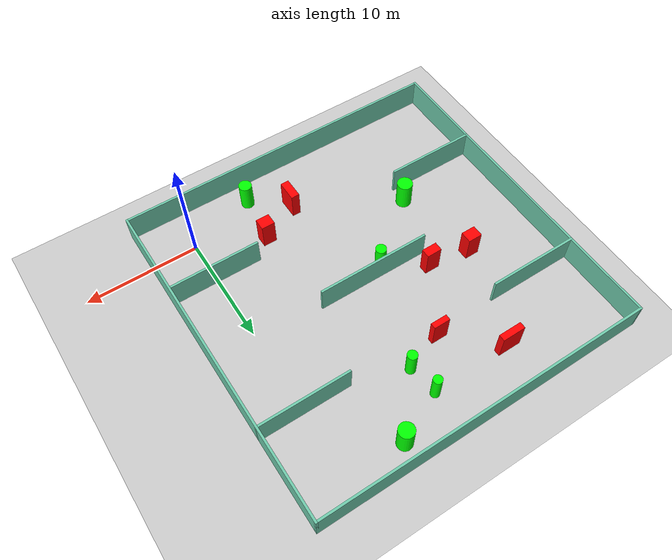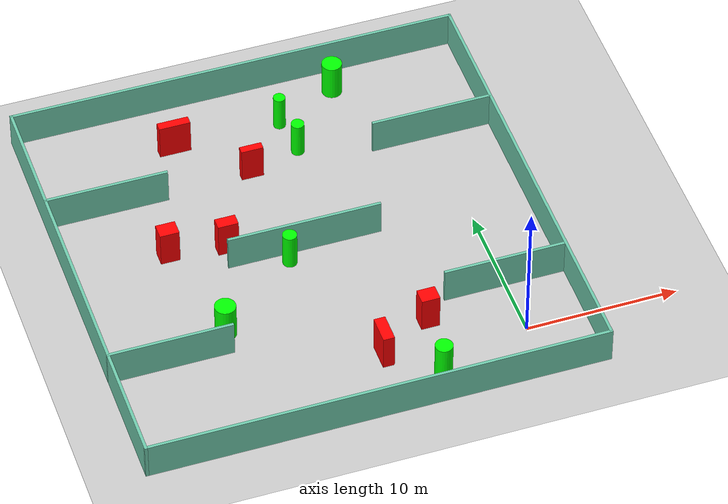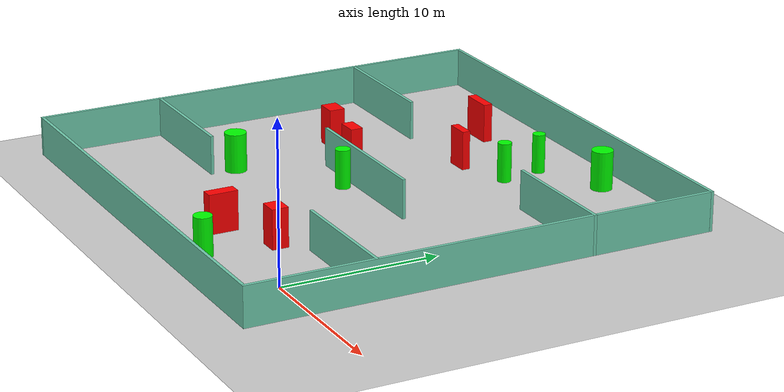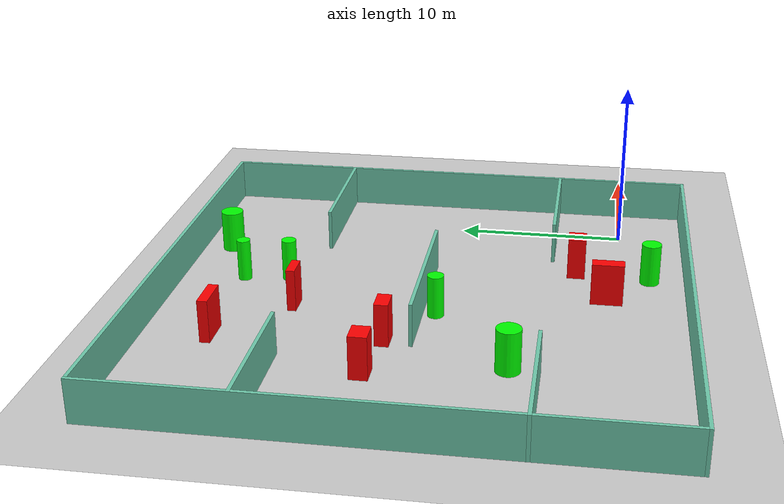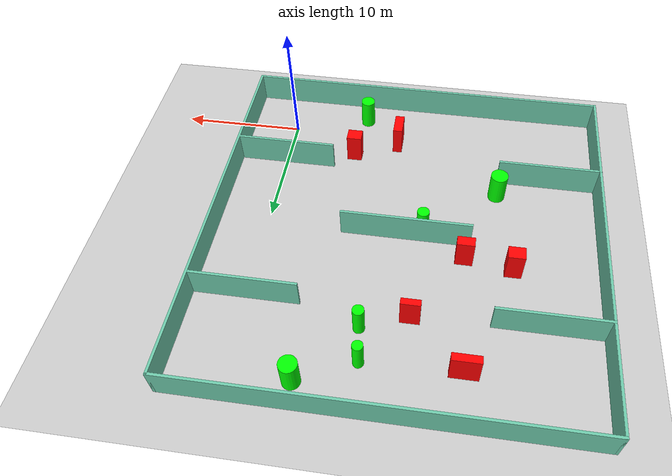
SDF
<sdf version="1.7">
 <world name="default">
  <light name="sun" type="directional">
   <pose>0 0 10 0 -0 0</pose>
   <diffuse>0.8 0.8 0.8 1</diffuse>
   <specular>0.2 0.2 0.2 1</specular>
   <attenuation>
    <range>1000</range>
    <constant>0.9</constant>
    <linear>0.01</linear>
    <quadratic>0.001</quadratic>
   </attenuation>
   <direction>-0.5 0.1 -0.9</direction>
   <spot><inner_angle>0</inner_angle><outer_angle>0</outer_angle><falloff>0</falloff></spot>
  </light>
  <model name="ground_plane">
   <static>1</static>
   <link name="link">
    <collision name="collision">
     <geometry><plane><normal>0 0 1</normal><size>100 100</size></plane></geometry>
     <surface>
      <contact><collide_bitmask>65535</collide_bitmask></contact>
      <friction><ode><mu>100</mu><mu2>50</mu2></ode></friction>
     </surface>
    </collision>
    <visual name="visual">
     <cast_shadows>0</cast_shadows>
     <geometry><plane><normal>0 0 1</normal><size>100 100</size></plane></geometry>
     <material>
      <script><uri>file://media/materials/scripts/gazebo.material</uri><name>Gazebo/Grey</name></script>
     </material>
    </visual>
   </link>
  </model>
  <gravity>0 0 -9.8</gravity>
  <magnetic_field>6e-06 2.3e-05 -4.2e-05</magnetic_field>
  <atmosphere type="adiabatic"/>
  <physics type="ode">
   <max_step_size>0.001</max_step_size>
   <real_time_factor>1</real_time_factor>
   <real_time_update_rate>1000</real_time_update_rate>
  </physics>
  <scene><ambient>0.4 0.4 0.4 1</ambient><background>0.7 0.7 0.7 1</background><shadows>1</shadows></scene>
  <spherical_coordinates>
   <surface_model>EARTH_WGS84</surface_model>
   <latitude_deg>0</latitude_deg>
   <longitude_deg>0</longitude_deg>
   <elevation>0</elevation>
   <heading_deg>0</heading_deg>
  </spherical_coordinates>
  <model name="my_base_walls">
   <link name="Wall_10">
    <collision name="Wall_10_Collision">
     <geometry><box><size>8.2 0.2 2.5</size></box></geometry>
     <pose>0 0 1.25 0 -0 0</pose>
    </collision>
    <visual name="Wall_10_Visual">
     <pose>0 0 1.25 0 -0 0</pose>
     <geometry><box><size>8.2 0.2 2.5</size></box></geometry>
     <material>
      <script><uri>file://media/materials/scripts/gazebo.material</uri><name>Gazebo/Grey</name></script>
      <ambient>0.435294 0.796078 0.67451 1</ambient>
     </material>
     <meta><layer>0</layer></meta>
    </visual>
    <pose>-11 -7 0 0 -0 0</pose>
   </link>
   <link name="Wall_12">
    <collision name="Wall_12_Collision">
     <geometry><box><size>8.2 0.2 2.5</size></box></geometry>
     <pose>0 0 1.25 0 -0 0</pose>
    </collision>
    <visual name="Wall_12_Visual">
     <pose>0 0 1.25 0 -0 0</pose>
     <geometry><box><size>8.2 0.2 2.5</size></box></geometry>
     <material>
      <script><uri>file://media/materials/scripts/gazebo.material</uri><name>Gazebo/Grey</name></script>
      <ambient>0.435294 0.796078 0.67451 1</ambient>
     </material>
     <meta><layer>0</layer></meta>
    </visual>
    <pose>-11 7 0 0 -0 0</pose>
   </link>
   <link name="Wall_14">
    <collision name="Wall_14_Collision">
     <geometry><box><size>8.2 0.2 2.5</size></box></geometry>
     <pose>0 0 1.25 0 -0 0</pose>
    </collision>
    <visual name="Wall_14_Visual">
     <pose>0 0 1.25 0 -0 0</pose>
     <geometry><box><size>8.2 0.2 2.5</size></box></geometry>
     <material>
      <script><uri>file://media/materials/scripts/gazebo.material</uri><name>Gazebo/Grey</name></script>
      <ambient>0.435294 0.796078 0.67451 1</ambient>
     </material>
     <meta><layer>0</layer></meta>
    </visual>
    <pose>11 7 0 0 -0 3.14159</pose>
   </link>
   <link name="Wall_16">
    <collision name="Wall_16_Collision">
     <geometry><box><size>10.2 0.2 2.5</size></box></geometry>
     <pose>0 0 1.25 0 -0 0</pose>
    </collision>
    <visual name="Wall_16_Visual">
     <pose>0 0 1.25 0 -0 0</pose>
     <geometry><box><size>10.2 0.2 2.5</size></box></geometry>
     <material>
      <script><uri>file://media/materials/scripts/gazebo.material</uri><name>Gazebo/Grey</name></script>
      <ambient>0.435294 0.796078 0.67451 1</ambient>
     </material>
     <meta><layer>0</layer></meta>
    </visual>
    <pose>0 0 0 0 -0 3.14159</pose>
   </link>
   <link name="Wall_2">
    <collision name="Wall_2_Collision">
     <geometry><box><size>30.2 0.2 2.5</size></box></geometry>
     <pose>0 0 1.25 0 -0 0</pose>
    </collision>
    <visual name="Wall_2_Visual">
     <pose>0 0 1.25 0 -0 0</pose>
     <geometry><box><size>30.2 0.2 2.5</size></box></geometry>
     <material>
      <script><uri>file://media/materials/scripts/gazebo.material</uri><name>Gazebo/Grey</name></script>
      <ambient>0.435294 0.796078 0.67451 1</ambient>
     </material>
     <meta><layer>0</layer></meta>
    </visual>
    <pose>0 -15 0 0 -0 3.14159</pose>
   </link>
   <link name="Wall_3">
    <collision name="Wall_3_Collision">
     <geometry><box><size>30.2 0.2 2.5</size></box></geometry>
     <pose>0 0 1.25 0 -0 0</pose>
    </collision>
    <visual name="Wall_3_Visual">
     <pose>0 0 1.25 0 -0 0</pose>
     <geometry><box><size>30.2 0.2 2.5</size></box></geometry>
     <material>
      <script><uri>file://media/materials/scripts/gazebo.material</uri><name>Gazebo/Grey</name></script>
      <ambient>0.435294 0.796078 0.67451 1</ambient>
     </material>
     <meta><layer>0</layer></meta>
    </visual>
    <pose>-15 0 0 0 -0 1.5708</pose>
   </link>
   <link name="Wall_4">
    <collision name="Wall_4_Collision">
     <geometry><box><size>30.2 0.2 2.5</size></box></geometry>
     <pose>0 0 1.25 0 -0 0</pose>
    </collision>
    <visual name="Wall_4_Visual">
     <pose>0 0 1.25 0 -0 0</pose>
     <geometry><box><size>30.2 0.2 2.5</size></box></geometry>
     <material>
      <script><uri>file://media/materials/scripts/gazebo.material</uri><name>Gazebo/Grey</name></script>
      <ambient>0.435294 0.796078 0.67451 1</ambient>
     </material>
     <meta><layer>0</layer></meta>
    </visual>
    <pose>0 15 0 0 -0 0</pose>
   </link>
   <link name="Wall_6">
    <collision name="Wall_6_Collision">
     <geometry><box><size>30.2 0.2 2.5</size></box></geometry>
     <pose>0 0 1.25 0 -0 0</pose>
    </collision>
    <visual name="Wall_6_Visual">
     <pose>0 0 1.25 0 -0 0</pose>
     <geometry><box><size>30.2 0.2 2.5</size></box></geometry>
     <material>
      <script><uri>file://media/materials/scripts/gazebo.material</uri><name>Gazebo/Grey</name></script>
      <ambient>0.435294 0.796078 0.67451 1</ambient>
     </material>
     <meta><layer>0</layer></meta>
    </visual>
    <pose>15 0 0 0 -0 1.5708</pose>
   </link>
   <link name="Wall_8">
    <collision name="Wall_8_Collision">
     <geometry><box><size>8.2 0.2 2.5</size></box></geometry>
     <pose>0 0 1.25 0 -0 0</pose>
    </collision>
    <visual name="Wall_8_Visual">
     <pose>0 0 1.25 0 -0 0</pose>
     <geometry><box><size>8.2 0.2 2.5</size></box></geometry>
     <material>
      <script><uri>file://media/materials/scripts/gazebo.material</uri><name>Gazebo/Grey</name></script>
      <ambient>0.435294 0.796078 0.67451 1</ambient>
     </material>
     <meta><layer>0</layer></meta>
    </visual>
    <pose>11 -7 0 0 -0 3.14159</pose>
   </link>
   <static>1</static>
   <pose>-11 11 0 0 -0 0</pose>
  </model>
  <model name="cylinder1">
   <static>1</static>
   <link name="link">
    <inertial>
     <mass>1</mass>
     <inertia><ixx>0.5</ixx><ixy>0</ixy><ixz>0</ixz><iyy>0.5</iyy><iyz>0</iyz><izz>1</izz></inertia>
    </inertial>
    <collision name="collision">
     <geometry><cylinder><radius>0.4747557262765112</radius><length>2.5</length></cylinder></geometry>
    </collision>
    <visual name="visual">
     <geometry><cylinder><radius>0.4747557262765112</radius><length>2.5</length></cylinder></geometry>
     <material>
      <ambient>0 1 0 1</ambient>
      <diffuse>0 1 0 1</diffuse>
      <specular>0.1 0.1 0.1 1</specular>
      <emissive>0 0 0 0</emissive>
     </material>
    </visual>
   </link>
   <pose>-12.250676464233068 10.176921363251946 1.25 0 0 0</pose>
  </model>
  <model name="cylinder2">
   <static>1</static>
   <link name="link">
    <inertial>
     <mass>1</mass>
     <inertia><ixx>0.5</ixx><ixy>0</ixy><ixz>0</ixz><iyy>0.5</iyy><iyz>0</iyz><izz>1</izz></inertia>
    </inertial>
    <collision name="collision">
     <geometry><cylinder><radius>0.4001309821100934</radius><length>2.5</length></cylinder></geometry>
    </collision>
    <visual name="visual">
     <geometry><cylinder><radius>0.4001309821100934</radius><length>2.5</length></cylinder></geometry>
     <material>
      <ambient>0 1 0 1</ambient>
      <diffuse>0 1 0 1</diffuse>
      <specular>0.1 0.1 0.1 1</specular>
      <emissive>0 0 0 0</emissive>
     </material>
    </visual>
   </link>
   <pose>-9.0570376313796 22.1566414894272 1.25 0 0 0</pose>
  </model>
  <model name="cylinder3">
   <static>1</static>
   <link name="link">
    <inertial>
     <mass>1</mass>
     <inertia><ixx>0.5</ixx><ixy>0</ixy><ixz>0</ixz><iyy>0.5</iyy><iyz>0</iyz><izz>1</izz></inertia>
    </inertial>
    <collision name="collision">
     <geometry><cylinder><radius>0.6720717710504682</radius><length>2.5</length></cylinder></geometry>
    </collision>
    <visual name="visual">
     <geometry><cylinder><radius>0.6720717710504682</radius><length>2.5</length></cylinder></geometry>
     <material>
      <ambient>0 1 0 1</ambient>
      <diffuse>0 1 0 1</diffuse>
      <specular>0.1 0.1 0.1 1</specular>
      <emissive>0 0 0 0</emissive>
     </material>
    </visual>
   </link>
   <pose>-4.814867871810549 24.095169507346952 1.25 0 0 0</pose>
  </model>
  <model name="cylinder4">
   <static>1</static>
   <link name="link">
    <inertial>
     <mass>1</mass>
     <inertia><ixx>0.5</ixx><ixy>0</ixy><ixz>0</ixz><iyy>0.5</iyy><iyz>0</iyz><izz>1</izz></inertia>
    </inertial>
    <collision name="collision">
     <geometry><cylinder><radius>0.5756585293502519</radius><length>2.5</length></cylinder></geometry>
    </collision>
    <visual name="visual">
     <geometry><cylinder><radius>0.5756585293502519</radius><length>2.5</length></cylinder></geometry>
     <material>
      <ambient>0 1 0 1</ambient>
      <diffuse>0 1 0 1</diffuse>
      <specular>0.1 0.1 0.1 1</specular>
      <emissive>0 0 0 0</emissive>
     </material>
    </visual>
   </link>
   <pose>-6.177219240664282 -1.845355145660137 1.25 0 0 0</pose>
  </model>
  <model name="cylinder5">
   <static>1</static>
   <link name="link">
    <inertial>
     <mass>1</mass>
     <inertia><ixx>0.5</ixx><ixy>0</ixy><ixz>0</ixz><iyy>0.5</iyy><iyz>0</iyz><izz>1</izz></inertia>
    </inertial>
    <collision name="collision">
     <geometry><cylinder><radius>0.6891618795942839</radius><length>2.5</length></cylinder></geometry>
    </collision>
    <visual name="visual">
     <geometry><cylinder><radius>0.6891618795942839</radius><length>2.5</length></cylinder></geometry>
     <material>
      <ambient>0 1 0 1</ambient>
      <diffuse>0 1 0 1</diffuse>
      <specular>0.1 0.1 0.1 1</specular>
      <emissive>0 0 0 0</emissive>
     </material>
    </visual>
   </link>
   <pose>-17.945524425756624 5.608347953781021 1.25 0 0 0</pose>
  </model>
  <model name="cylinder6">
   <static>1</static>
   <link name="link">
    <inertial>
     <mass>1</mass>
     <inertia><ixx>0.5</ixx><ixy>0</ixy><ixz>0</ixz><iyy>0.5</iyy><iyz>0</iyz><izz>1</izz></inertia>
    </inertial>
    <collision name="collision">
     <geometry><cylinder><radius>0.43527476381176894</radius><length>2.5</length></cylinder></geometry>
    </collision>
    <visual name="visual">
     <geometry><cylinder><radius>0.43527476381176894</radius><length>2.5</length></cylinder></geometry>
     <material>
      <ambient>0 1 0 1</ambient>
      <diffuse>0 1 0 1</diffuse>
      <specular>0.1 0.1 0.1 1</specular>
      <emissive>0 0 0 0</emissive>
     </material>
    </visual>
   </link>
   <pose>-8.676362667551327 19.485367380738882 1.25 0 0 0</pose>
  </model>
  <model name="box1">
   <static>1</static>
   <link name="link">
    <inertial>
     <mass>1</mass>
     <inertia><ixx>0.083</ixx><ixy>0</ixy><ixz>0</ixz><iyy>0.083</iyy><iyz>0</iyz><izz>0.083</izz></inertia>
    </inertial>
    <collision name="collision">
     <geometry><box><size>0.7546708875572061 1.8524204179059796 2.5</size></box></geometry>
    </collision>
    <visual name="visual">
     <geometry><box><size>0.7546708875572061 1.8524204179059796 2.5</size></box></geometry>
     <material>
      <ambient>1 0 0 1</ambient>
      <diffuse>1 0 0 1</diffuse>
      <specular>0.1 0.1 0.1 1</specular>
      <emissive>0 0 0 0</emissive>
     </material>
    </visual>
    <sensor name="my_contact" type="contact">
     <contact><collision>box_collision</collision><topic>__default_topic__</topic></contact>
    </sensor>
   </link>
   <pose>-9.214722567801036 0.6615548790380994 1.25 0 0 0</pose>
  </model>
  <model name="box2">
   <static>1</static>
   <link name="link">
    <inertial>
     <mass>1</mass>
     <inertia><ixx>0.083</ixx><ixy>0</ixy><ixz>0</ixz><iyy>0.083</iyy><iyz>0</iyz><izz>0.083</izz></inertia>
    </inertial>
    <collision name="collision">
     <geometry><box><size>1.27986574700478 1.024490413646072 2.5</size></box></geometry>
    </collision>
    <visual name="visual">
     <geometry><box><size>1.27986574700478 1.024490413646072 2.5</size></box></geometry>
     <material>
      <ambient>1 0 0 1</ambient>
      <diffuse>1 0 0 1</diffuse>
      <specular>0.1 0.1 0.1 1</specular>
      <emissive>0 0 0 0</emissive>
     </material>
    </visual>
    <sensor name="my_contact" type="contact">
     <contact><collision>box_collision</collision><topic>__default_topic__</topic></contact>
    </sensor>
   </link>
   <pose>-19.40762663577635 13.098423124581572 1.25 0 0 0</pose>
  </model>
  <model name="box3">
   <static>1</static>
   <link name="link">
    <inertial>
     <mass>1</mass>
     <inertia><ixx>0.083</ixx><ixy>0</ixy><ixz>0</ixz><iyy>0.083</iyy><iyz>0</iyz><izz>0.083</izz></inertia>
    </inertial>
    <collision name="collision">
     <geometry><box><size>1.3597890790956733 0.7907595847732335 2.5</size></box></geometry>
    </collision>
    <visual name="visual">
     <geometry><box><size>1.3597890790956733 0.7907595847732335 2.5</size></box></geometry>
     <material>
      <ambient>1 0 0 1</ambient>
      <diffuse>1 0 0 1</diffuse>
      <specular>0.1 0.1 0.1 1</specular>
      <emissive>0 0 0 0</emissive>
     </material>
    </visual>
    <sensor name="my_contact" type="contact">
     <contact><collision>box_collision</collision><topic>__default_topic__</topic></contact>
    </sensor>
   </link>
   <pose>-15.672537937508586 12.556722148712712 1.25 0 0 0</pose>
  </model>
  <model name="box4">
   <static>1</static>
   <link name="link">
    <inertial>
     <mass>1</mass>
     <inertia><ixx>0.083</ixx><ixy>0</ixy><ixz>0</ixz><iyy>0.083</iyy><iyz>0</iyz><izz>0.083</izz></inertia>
    </inertial>
    <collision name="collision">
     <geometry><box><size>1.4729698301614138 0.5072879454446741 2.5</size></box></geometry>
    </collision>
    <visual name="visual">
     <geometry><box><size>1.4729698301614138 0.5072879454446741 2.5</size></box></geometry>
     <material>
      <ambient>1 0 0 1</ambient>
      <diffuse>1 0 0 1</diffuse>
      <specular>0.1 0.1 0.1 1</specular>
      <emissive>0 0 0 0</emissive>
     </material>
    </visual>
    <sensor name="my_contact" type="contact">
     <contact><collision>box_collision</collision><topic>__default_topic__</topic></contact>
    </sensor>
   </link>
   <pose>-12.173452487669605 18.351076242702 1.25 0 0 0</pose>
  </model>
  <model name="box5">
   <static>1</static>
   <link name="link">
    <inertial>
     <mass>1</mass>
     <inertia><ixx>0.083</ixx><ixy>0</ixy><ixz>0</ixz><iyy>0.083</iyy><iyz>0</iyz><izz>0.083</izz></inertia>
    </inertial>
    <collision name="collision">
     <geometry><box><size>1.2096774498457308 1.047515396740667 2.5</size></box></geometry>
    </collision>
    <visual name="visual">
     <geometry><box><size>1.2096774498457308 1.047515396740667 2.5</size></box></geometry>
     <material>
      <ambient>1 0 0 1</ambient>
      <diffuse>1 0 0 1</diffuse>
      <specular>0.1 0.1 0.1 1</specular>
      <emissive>0 0 0 0</emissive>
     </material>
    </visual>
    <sensor name="my_contact" type="contact">
     <contact><collision>box_collision</collision><topic>__default_topic__</topic></contact>
    </sensor>
   </link>
   <pose>-5.677921048458206 2.517440075590226 1.25 0 0 0</pose>
  </model>
  <model name="box6">
   <static>1</static>
   <link name="link">
    <inertial>
     <mass>1</mass>
     <inertia><ixx>0.083</ixx><ixy>0</ixy><ixz>0</ixz><iyy>0.083</iyy><iyz>0</iyz><izz>0.083</izz></inertia>
    </inertial>
    <collision name="collision">
     <geometry><box><size>2.092610784186828 0.5783578735855229 2.5</size></box></geometry>
    </collision>
    <visual name="visual">
     <geometry><box><size>2.092610784186828 0.5783578735855229 2.5</size></box></geometry>
     <material>
      <ambient>1 0 0 1</ambient>
      <diffuse>1 0 0 1</diffuse>
      <specular>0.1 0.1 0.1 1</specular>
      <emissive>0 0 0 0</emissive>
     </material>
    </visual>
    <sensor name="my_contact" type="contact">
     <contact><collision>box_collision</collision><topic>__default_topic__</topic></contact>
    </sensor>
   </link>
   <pose>-16.249634991425296 22.074298164151088 1.25 0 0 0</pose>
  </model>
 </world>
</sdf>
